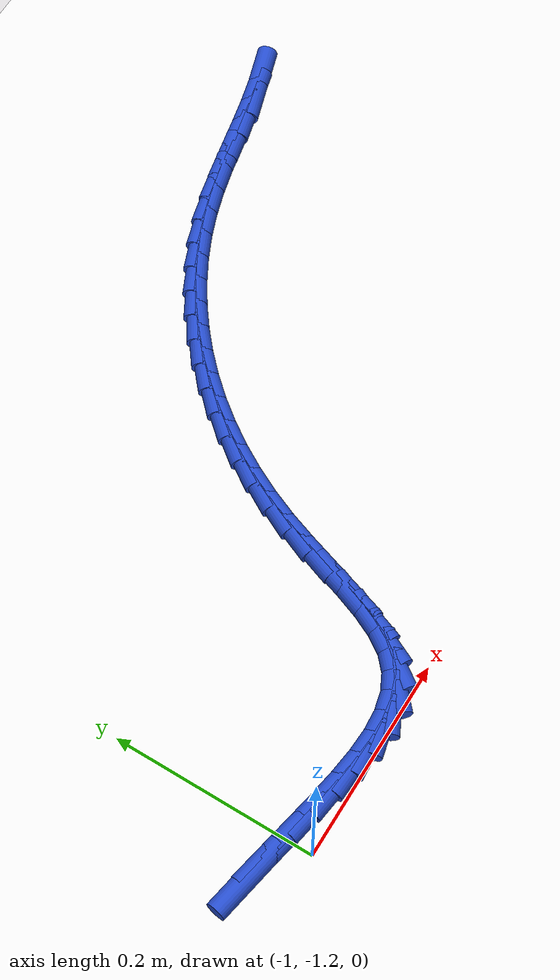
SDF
<sdf version="1.6">
 <world name="default">
  <model name="ground_plane">
   <static>1</static>
   <link name="link">
    <collision name="collision">
     <geometry><plane><normal>0 0 1</normal><size>100 100</size></plane></geometry>
     <surface><friction><ode><mu>100</mu><mu2>50</mu2></ode></friction></surface>
    </collision>
    <visual name="visual">
     <cast_shadows>0</cast_shadows>
     <geometry><plane><normal>0 0 1</normal><size>100 100</size></plane></geometry>
     <material>
      <script><uri>file://media/materials/scripts/gazebo.material</uri><name>Gazebo/WhiteGlow</name></script>
     </material>
    </visual>
   </link>
  </model>
  <model name="line">
   <link name="link_211">
    <pose>-1.0474786991416527 -1.164470854595252 0.01 0 1.57 -0.1883443321758368</pose>
    <collision name="collision">
     <geometry><cylinder><radius>0.01</radius><length>0.08</length></cylinder></geometry>
    </collision>
    <visual name="visual">
     <material>
      <script><name>Gazebo/Blue</name><uri>file://media/materials/scripts/gazebo.material</uri></script>
     </material>
     <geometry><cylinder><radius>0.01</radius><length>0.08</length></cylinder></geometry>
    </visual>
   </link>
   <link name="link_212">
    <pose>-1.017215872014561 -1.1702390546583146 0.01 0 1.57 -0.20421151218365344</pose>
    <collision name="collision">
     <geometry><cylinder><radius>0.01</radius><length>0.08</length></cylinder></geometry>
    </collision>
    <visual name="visual">
     <material>
      <script><name>Gazebo/Blue</name><uri>file://media/materials/scripts/gazebo.material</uri></script>
     </material>
     <geometry><cylinder><radius>0.01</radius><length>0.08</length></cylinder></geometry>
    </visual>
   </link>
   <link name="link_213">
    <pose>-0.9878107944131929 -1.17632879849896 0.01 0 1.57 -0.2020321936824983</pose>
    <collision name="collision">
     <geometry><cylinder><radius>0.01</radius><length>0.08</length></cylinder></geometry>
    </collision>
    <visual name="visual">
     <material>
      <script><name>Gazebo/Blue</name><uri>file://media/materials/scripts/gazebo.material</uri></script>
     </material>
     <geometry><cylinder><radius>0.01</radius><length>0.08</length></cylinder></geometry>
    </visual>
   </link>
   <link name="link_214">
    <pose>-0.9594780807949608 -1.1821320921706702 0.01 0 1.57 -0.1795472229707943</pose>
    <collision name="collision">
     <geometry><cylinder><radius>0.01</radius><length>0.08</length></cylinder></geometry>
    </collision>
    <visual name="visual">
     <material>
      <script><name>Gazebo/Blue</name><uri>file://media/materials/scripts/gazebo.material</uri></script>
     </material>
     <geometry><cylinder><radius>0.01</radius><length>0.08</length></cylinder></geometry>
    </visual>
   </link>
   <link name="link_215">
    <pose>-0.9324323456172785 -1.1870409417269272 0.01 0 1.57 -0.1325717588642928</pose>
    <collision name="collision">
     <geometry><cylinder><radius>0.01</radius><length>0.08</length></cylinder></geometry>
    </collision>
    <visual name="visual">
     <material>
      <script><name>Gazebo/Blue</name><uri>file://media/materials/scripts/gazebo.material</uri></script>
     </material>
     <geometry><cylinder><radius>0.01</radius><length>0.08</length></cylinder></geometry>
    </visual>
   </link>
   <link name="link_216">
    <pose>-0.9068882033375596 -1.1904473532212125 0.01 0 1.57 -0.05433554536526194</pose>
    <collision name="collision">
     <geometry><cylinder><radius>0.01</radius><length>0.08</length></cylinder></geometry>
    </collision>
    <visual name="visual">
     <material>
      <script><name>Gazebo/Blue</name><uri>file://media/materials/scripts/gazebo.material</uri></script>
     </material>
     <geometry><cylinder><radius>0.01</radius><length>0.08</length></cylinder></geometry>
    </visual>
   </link>
   <link name="link_217">
    <pose>-0.8830602684132168 -1.1917433327070084 0.01 0 1.57 0.06486931270906464</pose>
    <collision name="collision">
     <geometry><cylinder><radius>0.01</radius><length>0.08</length></cylinder></geometry>
    </collision>
    <visual name="visual">
     <material>
      <script><name>Gazebo/Blue</name><uri>file://media/materials/scripts/gazebo.material</uri></script>
     </material>
     <geometry><cylinder><radius>0.01</radius><length>0.08</length></cylinder></geometry>
    </visual>
   </link>
   <link name="link_218">
    <pose>-0.861163155301665 -1.190320886237796 0.01 0 1.57 0.23595011998483512</pose>
    <collision name="collision">
     <geometry><cylinder><radius>0.01</radius><length>0.08</length></cylinder></geometry>
    </collision>
    <visual name="visual">
     <material>
      <script><name>Gazebo/Blue</name><uri>file://media/materials/scripts/gazebo.material</uri></script>
     </material>
     <geometry><cylinder><radius>0.01</radius><length>0.08</length></cylinder></geometry>
    </visual>
   </link>
   <link name="link_219">
    <pose>-0.8414114784603166 -1.1855720198670574 0.01 0 1.57 0.4630709429550828</pose>
    <collision name="collision">
     <geometry><cylinder><radius>0.01</radius><length>0.08</length></cylinder></geometry>
    </collision>
    <visual name="visual">
     <material>
      <script><name>Gazebo/Blue</name><uri>file://media/materials/scripts/gazebo.material</uri></script>
     </material>
     <geometry><cylinder><radius>0.01</radius><length>0.08</length></cylinder></geometry>
    </visual>
   </link>
   <link name="link_220">
    <pose>-0.8240198523465854 -1.1768887396482746 0.01 0 1.57 0.7283523217212728</pose>
    <collision name="collision">
     <geometry><cylinder><radius>0.01</radius><length>0.08</length></cylinder></geometry>
    </collision>
    <visual name="visual">
     <material>
      <script><name>Gazebo/Blue</name><uri>file://media/materials/scripts/gazebo.material</uri></script>
     </material>
     <geometry><cylinder><radius>0.01</radius><length>0.08</length></cylinder></geometry>
    </visual>
   </link>
   <link name="link_221">
    <pose>-0.809199288852723 -1.1636694694367251 0.01 0 1.57 0.9650324089278108</pose>
    <collision name="collision">
     <geometry><cylinder><radius>0.01</radius><length>0.08</length></cylinder></geometry>
    </collision>
    <visual name="visual">
     <material>
      <script><name>Gazebo/Blue</name><uri>file://media/materials/scripts/gazebo.material</uri></script>
     </material>
     <geometry><cylinder><radius>0.01</radius><length>0.08</length></cylinder></geometry>
    </visual>
   </link>
   <link name="link_222">
    <pose>-0.7968581689123612 -1.14585175602447 0.01 0 1.57 1.1179620298939452</pose>
    <collision name="collision">
     <geometry><cylinder><radius>0.01</radius><length>0.08</length></cylinder></geometry>
    </collision>
    <visual name="visual">
     <material>
      <script><name>Gazebo/Blue</name><uri>file://media/materials/scripts/gazebo.material</uri></script>
     </material>
     <geometry><cylinder><radius>0.01</radius><length>0.08</length></cylinder></geometry>
    </visual>
   </link>
   <link name="link_223">
    <pose>-0.7863778705542375 -1.1243119772969725 0.01 0 1.57 1.205483675329488</pose>
    <collision name="collision">
     <geometry><cylinder><radius>0.01</radius><length>0.08</length></cylinder></geometry>
    </collision>
    <visual name="visual">
     <material>
      <script><name>Gazebo/Blue</name><uri>file://media/materials/scripts/gazebo.material</uri></script>
     </material>
     <geometry><cylinder><radius>0.01</radius><length>0.08</length></cylinder></geometry>
    </visual>
   </link>
   <link name="link_224">
    <pose>-0.7770869195625705 -1.1000206649480537 0.01 0 1.57 1.2462073021758142</pose>
    <collision name="collision">
     <geometry><cylinder><radius>0.01</radius><length>0.08</length></cylinder></geometry>
    </collision>
    <visual name="visual">
     <material>
      <script><name>Gazebo/Blue</name><uri>file://media/materials/scripts/gazebo.material</uri></script>
     </material>
     <geometry><cylinder><radius>0.01</radius><length>0.08</length></cylinder></geometry>
    </visual>
   </link>
   <link name="link_225">
    <pose>-0.7683138417215779 -1.0739483506715348 0.01 0 1.57 1.2501928302796854</pose>
    <collision name="collision">
     <geometry><cylinder><radius>0.01</radius><length>0.08</length></cylinder></geometry>
    </collision>
    <visual name="visual">
     <material>
      <script><name>Gazebo/Blue</name><uri>file://media/materials/scripts/gazebo.material</uri></script>
     </material>
     <geometry><cylinder><radius>0.01</radius><length>0.08</length></cylinder></geometry>
    </visual>
   </link>
   <link name="link_226">
    <pose>-0.7593871628154781 -1.047065566161236 0.01 0 1.57 1.2208891954311514</pose>
    <collision name="collision">
     <geometry><cylinder><radius>0.01</radius><length>0.08</length></cylinder></geometry>
    </collision>
    <visual name="visual">
     <material>
      <script><name>Gazebo/Blue</name><uri>file://media/materials/scripts/gazebo.material</uri></script>
     </material>
     <geometry><cylinder><radius>0.01</radius><length>0.08</length></cylinder></geometry>
    </visual>
   </link>
   <link name="link_227">
    <pose>-0.7496354162172786 -1.0203428334941642 0.01 0 1.57 1.1636413039462163</pose>
    <collision name="collision">
     <geometry><cylinder><radius>0.01</radius><length>0.08</length></cylinder></geometry>
    </collision>
    <visual name="visual">
     <material>
      <script><name>Gazebo/Blue</name><uri>file://media/materials/scripts/gazebo.material</uri></script>
     </material>
     <geometry><cylinder><radius>0.01</radius><length>0.08</length></cylinder></geometry>
    </visual>
   </link>
   <link name="link_228">
    <pose>-0.7385239515862603 -0.9945772956869807 0.01 0 1.57 1.100469639786064</pose>
    <collision name="collision">
     <geometry><cylinder><radius>0.01</radius><length>0.08</length></cylinder></geometry>
    </collision>
    <visual name="visual">
     <material>
      <script><name>Gazebo/Blue</name><uri>file://media/materials/scripts/gazebo.material</uri></script>
     </material>
     <geometry><cylinder><radius>0.01</radius><length>0.08</length></cylinder></geometry>
    </visual>
   </link>
   <link name="link_229">
    <pose>-0.7260041149328874 -0.9699502217767846 0.01 0 1.57 1.0365916063090395</pose>
    <collision name="collision">
     <geometry><cylinder><radius>0.01</radius><length>0.08</length></cylinder></geometry>
    </collision>
    <visual name="visual">
     <material>
      <script><name>Gazebo/Blue</name><uri>file://media/materials/scripts/gazebo.material</uri></script>
     </material>
     <geometry><cylinder><radius>0.01</radius><length>0.08</length></cylinder></geometry>
    </visual>
   </link>
   <link name="link_230">
    <pose>-0.7121351151467461 -0.9465061926538344 0.01 0 1.57 0.9720270337633574</pose>
    <collision name="collision">
     <geometry><cylinder><radius>0.01</radius><length>0.08</length></cylinder></geometry>
    </collision>
    <visual name="visual">
     <material>
      <script><name>Gazebo/Blue</name><uri>file://media/materials/scripts/gazebo.material</uri></script>
     </material>
     <geometry><cylinder><radius>0.01</radius><length>0.08</length></cylinder></geometry>
    </visual>
   </link>
   <link name="link_231">
    <pose>-0.6969761611174243 -0.92428978920839 0.01 0 1.57 0.906791951905441</pose>
    <collision name="collision">
     <geometry><cylinder><radius>0.01</radius><length>0.08</length></cylinder></geometry>
    </collision>
    <visual name="visual">
     <material>
      <script><name>Gazebo/Blue</name><uri>file://media/materials/scripts/gazebo.material</uri></script>
     </material>
     <geometry><cylinder><radius>0.01</radius><length>0.08</length></cylinder></geometry>
    </visual>
   </link>
   <link name="link_232">
    <pose>-0.680586461734509 -0.9033455923307102 0.01 0 1.57 0.8409003606516856</pose>
    <collision name="collision">
     <geometry><cylinder><radius>0.01</radius><length>0.08</length></cylinder></geometry>
    </collision>
    <visual name="visual">
     <material>
      <script><name>Gazebo/Blue</name><uri>file://media/materials/scripts/gazebo.material</uri></script>
     </material>
     <geometry><cylinder><radius>0.01</radius><length>0.08</length></cylinder></geometry>
    </visual>
   </link>
   <link name="link_233">
    <pose>-0.6630252258875874 -0.8837181829110541 0.01 0 1.57 0.774366485503506</pose>
    <collision name="collision">
     <geometry><cylinder><radius>0.01</radius><length>0.08</length></cylinder></geometry>
    </collision>
    <visual name="visual">
     <material>
      <script><name>Gazebo/Blue</name><uri>file://media/materials/scripts/gazebo.material</uri></script>
     </material>
     <geometry><cylinder><radius>0.01</radius><length>0.08</length></cylinder></geometry>
    </visual>
   </link>
   <link name="link_234">
    <pose>-0.6443516624662464 -0.8654521418396809 0.01 0 1.57 0.7072074492489107</pose>
    <collision name="collision">
     <geometry><cylinder><radius>0.01</radius><length>0.08</length></cylinder></geometry>
    </collision>
    <visual name="visual">
     <material>
      <script><name>Gazebo/Blue</name><uri>file://media/materials/scripts/gazebo.material</uri></script>
     </material>
     <geometry><cylinder><radius>0.01</radius><length>0.08</length></cylinder></geometry>
    </visual>
   </link>
   <link name="link_235">
    <pose>-0.6246249803600743 -0.8485920500068505 0.01 0 1.57 0.639446258276182</pose>
    <collision name="collision">
     <geometry><cylinder><radius>0.01</radius><length>0.08</length></cylinder></geometry>
    </collision>
    <visual name="visual">
     <material>
      <script><name>Gazebo/Blue</name><uri>file://media/materials/scripts/gazebo.material</uri></script>
     </material>
     <geometry><cylinder><radius>0.01</radius><length>0.08</length></cylinder></geometry>
    </visual>
   </link>
   <link name="link_236">
    <pose>-0.6039043884586577 -0.8331824883028215 0.01 0 1.57 0.5711149664165134</pose>
    <collision name="collision">
     <geometry><cylinder><radius>0.01</radius><length>0.08</length></cylinder></geometry>
    </collision>
    <visual name="visual">
     <material>
      <script><name>Gazebo/Blue</name><uri>file://media/materials/scripts/gazebo.material</uri></script>
     </material>
     <geometry><cylinder><radius>0.01</radius><length>0.08</length></cylinder></geometry>
    </visual>
   </link>
   <link name="link_237">
    <pose>-0.5822490956515837 -0.8192680376178533 0.01 0 1.57 0.5022578432216309</pose>
    <collision name="collision">
     <geometry><cylinder><radius>0.01</radius><length>0.08</length></cylinder></geometry>
    </collision>
    <visual name="visual">
     <material>
      <script><name>Gazebo/Blue</name><uri>file://media/materials/scripts/gazebo.material</uri></script>
     </material>
     <geometry><cylinder><radius>0.01</radius><length>0.08</length></cylinder></geometry>
    </visual>
   </link>
   <link name="link_238">
    <pose>-0.5597183108284399 -0.806893278842205 0.01 0 1.57 0.43293434025792227</pose>
    <collision name="collision">
     <geometry><cylinder><radius>0.01</radius><length>0.08</length></cylinder></geometry>
    </collision>
    <visual name="visual">
     <material>
      <script><name>Gazebo/Blue</name><uri>file://media/materials/scripts/gazebo.material</uri></script>
     </material>
     <geometry><cylinder><radius>0.01</radius><length>0.08</length></cylinder></geometry>
    </visual>
   </link>
   <link name="link_239">
    <pose>-0.5363712428788134 -0.7961027928661357 0.01 0 1.57 0.3632216234456114</pose>
    <collision name="collision">
     <geometry><cylinder><radius>0.01</radius><length>0.08</length></cylinder></geometry>
    </collision>
    <visual name="visual">
     <material>
      <script><name>Gazebo/Blue</name><uri>file://media/materials/scripts/gazebo.material</uri></script>
     </material>
     <geometry><cylinder><radius>0.01</radius><length>0.08</length></cylinder></geometry>
    </visual>
   </link>
   <link name="link_240">
    <pose>-0.5122671006922913 -0.7869411605799048 0.01 0 1.57 0.29420784126028054</pose>
    <collision name="collision">
     <geometry><cylinder><radius>0.01</radius><length>0.08</length></cylinder></geometry>
    </collision>
    <visual name="visual">
     <material>
      <script><name>Gazebo/Blue</name><uri>file://media/materials/scripts/gazebo.material</uri></script>
     </material>
     <geometry><cylinder><radius>0.01</radius><length>0.08</length></cylinder></geometry>
    </visual>
   </link>
   <link name="link_241">
    <pose>-0.4874738481022249 -0.7794287771419236 0.01 0 1.57 0.23907587953197001</pose>
    <collision name="collision">
     <geometry><cylinder><radius>0.01</radius><length>0.08</length></cylinder></geometry>
    </collision>
    <visual name="visual">
     <material>
      <script><name>Gazebo/Blue</name><uri>file://media/materials/scripts/gazebo.material</uri></script>
     </material>
     <geometry><cylinder><radius>0.01</radius><length>0.08</length></cylinder></geometry>
    </visual>
   </link>
   <link name="link_242">
    <pose>-0.46217643871286684 -0.7732628507999446 0.01 0 1.57 0.20664166630564085</pose>
    <collision name="collision">
     <geometry><cylinder><radius>0.01</radius><length>0.08</length></cylinder></geometry>
    </collision>
    <visual name="visual">
     <material>
      <script><name>Gazebo/Blue</name><uri>file://media/materials/scripts/gazebo.material</uri></script>
     </material>
     <geometry><cylinder><radius>0.01</radius><length>0.08</length></cylinder></geometry>
    </visual>
   </link>
   <link name="link_243">
    <pose>-0.4366432177595515 -0.7679102185186902 0.01 0 1.57 0.19655358316304855</pose>
    <collision name="collision">
     <geometry><cylinder><radius>0.01</radius><length>0.08</length></cylinder></geometry>
    </collision>
    <visual name="visual">
     <material>
      <script><name>Gazebo/Blue</name><uri>file://media/materials/scripts/gazebo.material</uri></script>
     </material>
     <geometry><cylinder><radius>0.01</radius><length>0.08</length></cylinder></geometry>
    </visual>
   </link>
   <link name="link_244">
    <pose>-0.4111443234430874 -0.7628327641548679 0.01 0 1.57 0.2088755543966586</pose>
    <collision name="collision">
     <geometry><cylinder><radius>0.01</radius><length>0.08</length></cylinder></geometry>
    </collision>
    <visual name="visual">
     <material>
      <script><name>Gazebo/Blue</name><uri>file://media/materials/scripts/gazebo.material</uri></script>
     </material>
     <geometry><cylinder><radius>0.01</radius><length>0.08</length></cylinder></geometry>
    </visual>
   </link>
   <link name="link_245">
    <pose>-0.3859498939642809 -0.7574923715651862 0.01 0 1.57 0.24446214418777523</pose>
    <collision name="collision">
     <geometry><cylinder><radius>0.01</radius><length>0.08</length></cylinder></geometry>
    </collision>
    <visual name="visual">
     <material>
      <script><name>Gazebo/Blue</name><uri>file://media/materials/scripts/gazebo.material</uri></script>
     </material>
     <geometry><cylinder><radius>0.01</radius><length>0.08</length></cylinder></geometry>
    </visual>
   </link>
   <link name="link_246">
    <pose>-0.3613300675239388 -0.7513509246063526 0.01 0 1.57 0.3048342312942071</pose>
    <collision name="collision">
     <geometry><cylinder><radius>0.01</radius><length>0.08</length></cylinder></geometry>
    </collision>
    <visual name="visual">
     <material>
      <script><name>Gazebo/Blue</name><uri>file://media/materials/scripts/gazebo.material</uri></script>
     </material>
     <geometry><cylinder><radius>0.01</radius><length>0.08</length></cylinder></geometry>
    </visual>
   </link>
  </model>
 </world>
</sdf>
